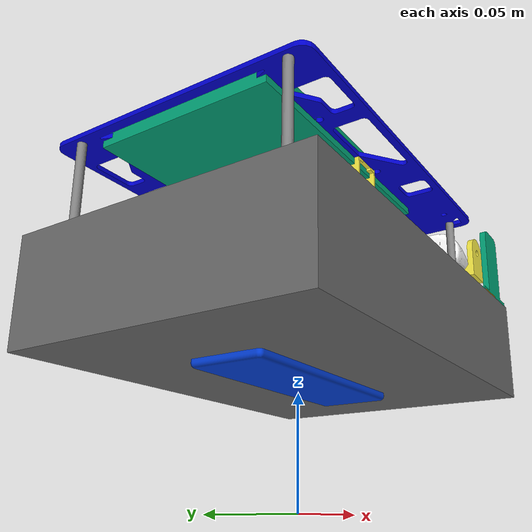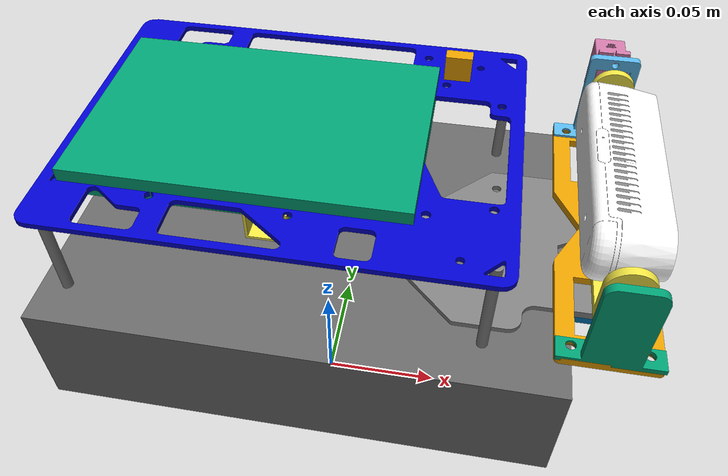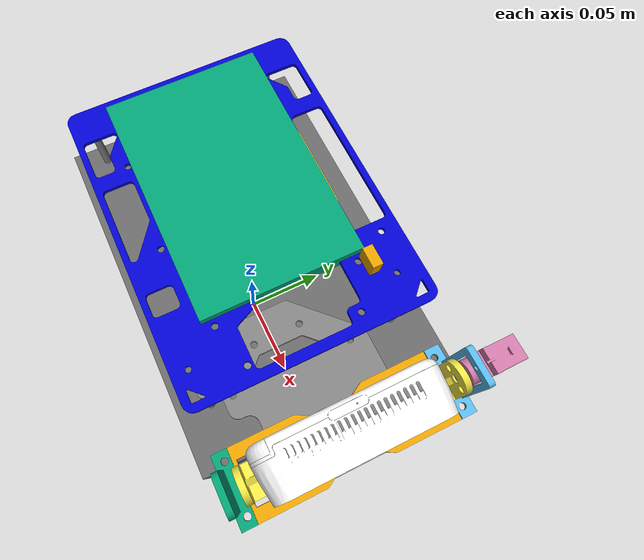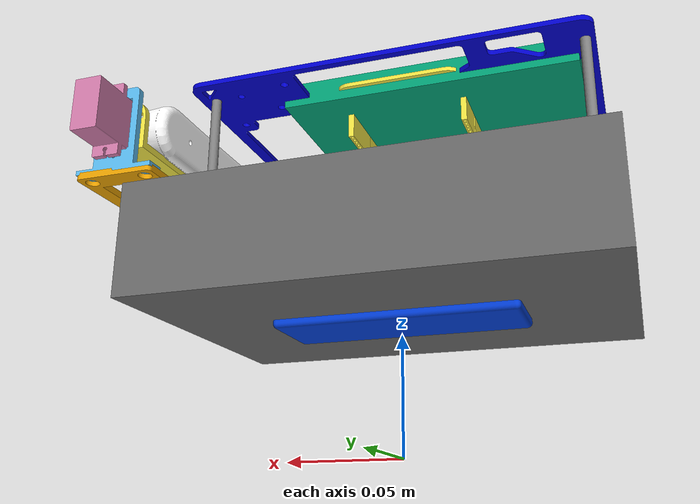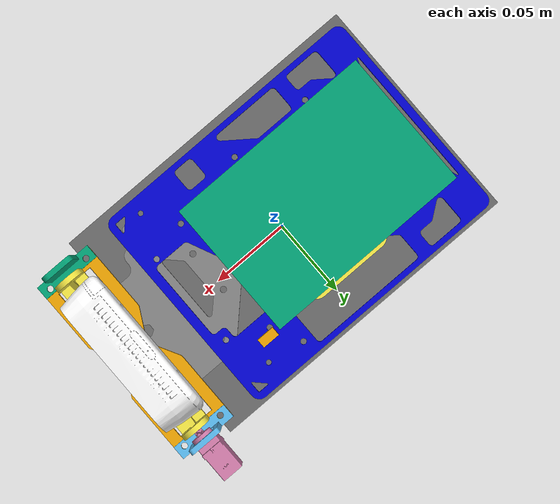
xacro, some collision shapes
<?xml version="1.0"?>
<robot name="myrobot" xmlns:xacro="http://ros.org/wiki/xacro">
  <xacro:include filename="$(find myrobot)/models/myroboturdf/myrobot.gazebo.xacro"/>
  <xacro:include filename="$(find myrobot)/models/myroboturdf/common_properties.xacro"/>

<!-- LINKS -->
    <link name="base_footprint"/>

    <joint name="base_joint" type="fixed">
      <parent link="base_footprint"/>
      <child link="cube_base"/>
      <origin xyz="0.0 0.0 0.08" rpy="0 0 0"/>
    </joint>

    <link name="cube_base">
      <inertial>
        <origin xyz="0 0 0" rpy="0 0 0"/>
        <mass value="8.2573504e-01"/>
        <inertia ixx="2.2124416e-03" ixy="-1.2294101e-05" ixz="3.4938785e-05"
                 iyy="2.1193702e-03" iyz="-5.0120904e-06"
                 izz="2.0064271e-03" />
      </inertial>
      <collision name="cube_base_collision">
        <origin xyz="0 0 0 " rpy="0 0 0"/>
        <geometry>
          <box size="0.19 0.134 0.047"/>
        </geometry>
      </collision>

      <visual name="cube_base_visual">
        <origin xyz="0.02 0 -0.01" rpy="1.5707 0 1.5707"/>
        <geometry>
          <mesh filename="package://myrobot/models/myroboturdf/meshes/Devastator.stl" scale="0.001 0.001 0.001"/>
        </geometry>
        <material name="light_black"/>
      </visual>

      <collision name = "caster_collision">
      <origin xyz="-1 0 -0.03" rpy="0 0 0"/>
        <geometry>
          <sphere radius="0.05"/>
        </geometry>
        <surface>
          <friction>
            <ode>
              <mu>0</mu>
              <mu2>0</mu2>
              <slip1>0</slip1>
              <slip2>0</slip2>
            </ode>
          </friction>
        </surface>
      </collision>

      <collision name = 'caster2_collision'>
      <origin xyz="1 0 -0.03" rpy="0 0 0"/>
        <geometry>
          <sphere radius="0.05"/>
        </geometry>
        <surface>
          <friction>
            <ode>
              <mu>0</mu>
              <mu2>0</mu2>
              <slip1>0</slip1>
              <slip2>0</slip2>
            </ode>
          </friction>
        </surface>
      </collision>

    </link>

    <joint name="wheel_left_joint" type="continuous">
      <parent link="cube_base"/>
      <child link="wheel_left_link"/>
      <origin xyz="-0.0 0.087 -0.013" rpy="-1.57 0 0"/>
      <axis xyz="0 0 1"/>
    </joint>

    <link name="wheel_left_link">
      <inertial>
        <mass value="0.2"/>
        <origin rpy="0 0 0" xyz="0 0 0"/>
        <inertia ixx="0.00052666666" ixy="0" ixz="0" iyy="0.00052666666" iyz="0" izz="0.001"/>
      </inertial>

      <collision name="wheel_left_link_collision">
        <geometry>
          <cylinder length="0.035" radius="0.06825"/>
        </geometry>
      </collision>

    </link>

    <joint name="wheel_right_joint" type="continuous">
      <parent link="cube_base"/>
      <child link="wheel_right_link"/>
      <origin xyz="-0.0 -0.087 -0.013" rpy="-1.57 0 0"/>
      <axis xyz="0 0 1"/>
    </joint>

    <link name="wheel_right_link">
      <inertial>
        <mass value="0.2"/>
        <origin rpy="0 0 0" xyz="0 0 0"/>
        <inertia ixx="0.00052666666" ixy="0" ixz="0" iyy="0.00052666666" iyz="0" izz="0.001"/>
      </inertial>

      <collision name="wheel_right_link_collision">
        <geometry>
          <cylinder length="0.035" radius="0.06825"/>
        </geometry>
      </collision>

    </link>

    <joint name="BaseBoards_joint" type="fixed">
      <parent link="cube_base"/>
      <child link="BaseBoards"/>
      <origin xyz="-0.01 0 0.0635" rpy="0 0 0"/>
    </joint>

    <link name="BaseBoards">

      <collision name="BaseBoards_collision">
        <origin xyz="0 0 0 " rpy="0 0 0"/>
        <geometry>
          <box size="0.16 0.122315 0.002"/>
        </geometry>
      </collision>
      <visual  name="BaseBoards_visual">
        <origin xyz="0.05 0 0" rpy="0 0 1.5707"/>
        <geometry>
          <mesh filename="package://myrobot/models/myroboturdf/meshes/Supports/BaseBoards.STL" scale="0.001 0.001 0.001"/>
        </geometry>
        <material name="blue"/>
      </visual>

      <collision name = "stick1_collision">

      <origin xyz="0.075 0.05 -0.02 " rpy="0 0 0"/>
        <geometry>
          <cylinder length="0.04" radius="0.002"/>
        </geometry>
      </collision>

      <visual name="stick1_visual">
      <origin xyz="0.075 0.05 -0.02 " rpy="0 0 0"/>
        <geometry>
          <cylinder length="0.04" radius="0.002"/>
        </geometry>
        <material name="grey"/>
      </visual>

      <collision name = "stick2_collision">
      <origin xyz="0.075 -0.05 -0.02" rpy="0 0 0"/>
        <geometry>
          <cylinder length="0.04" radius="0.002"/>
        </geometry>
      </collision>

      <visual name="stick2_visual">
      <origin xyz="0.075 -0.05 -0.02 " rpy="0 0 0"/>
        <geometry>
          <cylinder length="0.04" radius="0.002"/>
        </geometry>
        <material name="grey"/>
      </visual>

      <collision name = "stick3_collision">
      <origin xyz="-0.075 -0.05 -0.02" rpy="0 0 0"/>
        <geometry>
          <cylinder length="0.04" radius="0.002"/>
        </geometry>
      </collision>

      <visual name="stick3_visual">
      <origin xyz="-0.075 -0.05 -0.02 " rpy="0 0 0"/>
        <geometry>
          <cylinder length="0.04" radius="0.002"/>
        </geometry>
        <material name="grey"/>
      </visual>

      <collision name = "stick4_collision">
      <origin xyz="-0.075 0.05 -0.02" rpy="0 0 0"/>
        <geometry>
          <cylinder length="0.04" radius="0.002"/>
        </geometry>
      </collision>

      <visual name="stick4_visual">
      <origin xyz="-0.075 0.05 -0.02 " rpy="0 0 0"/>
        <geometry>
          <cylinder length="0.04" radius="0.002"/>
        </geometry>
        <material name="grey"/>
      </visual>
    </link>

    <joint name="piastra_anteriore_joint" type="fixed">
      <parent link="cube_base"/>
      <child link="piastra_anteriore"/>
      <origin xyz="0.078 -0.004 0.024" rpy="0 0 0"/>
    </joint>

    <link name="piastra_anteriore">

      <collision name="piastra_anteriore_collision">
        <origin xyz="0 0 0 " rpy="0 0 0"/>
        <geometry>
          <box size="0.086 0.079320 0.003"/>
        </geometry>
      </collision>
      <visual>
        <origin xyz="0.025 0 -0.0015 " rpy="0 0 1.5707"/>
        <geometry>
          <mesh filename="package://myrobot/models/myroboturdf/meshes/Supports/Piastra_anteriore2.stl" scale="0.001 0.001 0.001"/>
        </geometry>
        <material name="grey"/>
      </visual>
    </link>

    <joint name="supporto_sg90_joint" type="fixed">
      <parent link="piastra_anteriore"/>
      <child link="supporto_sg90"/>
      <origin xyz="0.024 0 -0.005" rpy="0 0 0"/>
    </joint>

    <link name="supporto_sg90">

      <collision name="supporto_sg90_collision">
        <origin xyz="0 0 0 " rpy="0 0 0"/>
        <geometry>
          <box size="0.027 0.049 0.004"/>
        </geometry>
      </collision>
      <visual>
        <origin xyz="-0.003 0.015 0" rpy="0 0 1.5707"/>
        <geometry>
          <mesh filename="package://myrobot/models/myroboturdf/meshes/Supports/Supporto_sg90_base.stl" scale="0.001 0.001 0.001"/>
        </geometry>
      </visual>
    </link>

    <joint name="supporto_piastra_albero_joint" type="fixed">
      <parent link="sg90h_shaft"/>
      <child link="supporto_piastra_albero"/>
      <origin xyz="0 0 -0.005" rpy="0 0 0"/>
    </joint>

    <link name="supporto_piastra_albero">

      <collision name="supporto_piastra_albero_collision">
        <origin xyz="0 0 0 " rpy="0 0 0"/>
        <geometry>
          <cylinder length="0.004" radius="0.008"/>
        </geometry>
      </collision>
      <visual name="supporto_piastra_albero_visual">
        <origin xyz="0 0 -0.002" rpy="1.5707 0 4.71238"/>
        <geometry>
          <mesh filename="package://myrobot/models/myroboturdf/meshes/Supports/Supporto_piastra_albero.stl" scale="0.001 0.001 0.001"/>
        </geometry>
      </visual>
    </link>

    <joint name="supporto_pitch_servo_1_joint" type="fixed">
      <parent link="supporto_piastra_albero"/>
      <child link="supporto_pitch_servo_1"/>
      <origin xyz="0 0 -0.004" rpy="0 0 0" />
    </joint>

    <link name='supporto_pitch_servo_1'>

      <collision name='supporto_pitch_servo_1_collision'>
        <geometry>
          <box size="0.035 0.12 0.003"/>
        </geometry>
      </collision>

      <visual name='supporto_pitch_servo_1_visual'>
      <origin xyz="0 0 0.004" rpy="3.1415 0 1.5707" />
        <geometry>
          <mesh filename="package://myrobot/models/myroboturdf/meshes/Supports/supporto_pitch_servo_1_new.stl" scale="0.001 0.001 0.001"/>
        </geometry>
      </visual>

    </link>

    <joint name="supporto_pitch_servo_2_joint" type="fixed">
      <parent link="supporto_pitch_servo_1"/>
      <child link="supporto_pitch_servo_2"/>
      <origin xyz="0 -0.059 -0.02" rpy="0 0 -1.5707"/>
    </joint>

    <link name='supporto_pitch_servo_2'>
      <collision name='supporto_pitch_servo_2_collision'>
        <geometry>
          <box size="0.002 0.02 0.035"/>
        </geometry>
      </collision>
      <visual name='supporto_pitch_servo_2_visual'>
      <origin xyz="-0.042 0 0.02" rpy="0 3.1415 0" />
        <geometry>
          <mesh filename="package://myrobot/models/myroboturdf/meshes/Supports/supporto_pitch_servo_2.stl" scale="0.001 0.001 0.001"/>
        </geometry>
      </visual>
    </link>

    <joint name="supporto_pitch_servo_2_noservo_joint" type="fixed">
      <parent link="supporto_pitch_servo_1"/>
      <child link="supporto_pitch_servo_2_noservo"/>
      <origin xyz="0 0.059 -0.02" rpy="0 0 -1.5707"/>
    </joint>

    <link name='supporto_pitch_servo_2_noservo'>
      <collision name='supporto_pitch_servo_2_noservo_collision'>
        <geometry>
          <box size="0.0075 0.035 0.002"/>
        </geometry>
      </collision>
      <visual name='supporto_pitch_servo_2_noservo_visual'>
      <origin xyz="0.085 0 0.02" rpy="0 3.1415 0" />
        <geometry>
          <mesh filename="package://myrobot/models/myroboturdf/meshes/Supports/supporto_pitch_servo_2_noservo.dae"/>
            scale="0.001 0.001 0.001"/>
        </geometry>
      </visual>

    </link>

    <joint name="supp_RS_joint" type="fixed">
      <parent link="sg90v_shaft"/>
      <child link="supp_RS"/>
      <origin xyz="0 0.010 -0.055" rpy="1.5707 0 0"/>
    </joint>

    <link name='supp_RS'>
      <collision name='collision'>
        <geometry>
          <box size="0.016 0.105 0.0035"/>
        </geometry>
      </collision>
      <visual name='supp_RS_visual'>
     <origin xyz="0.0 0.054 0.013" rpy="1.5707 0 1.5707"/>
        <geometry>
          <mesh filename="package://myrobot/models/myroboturdf/meshes/Supports/Supp_RS.dae"/>
        </geometry>
      </visual>

      <collision name='vertical3_collision'>
      <origin xyz="0 0.05 0.01" rpy="0 0 0"/>
        <geometry>
          <box size="0.016 0.0035 0.02"/>
        </geometry>
      </collision>

      <collision name='vertical4_collision'>
      <origin xyz="0 -0.05 0.01" rpy="0 0 0"/>
        <geometry>
          <box size="0.016 0.0035 0.02"/>
        </geometry>
      </collision>

    </link>

  <joint name="imu_joint" type="fixed">
    <parent link="cube_base"/>
    <child link="imu_link"/>
    <origin xyz="0 0 0" rpy="0 0 0"/>
  </joint>

  <link name="imu_link"/>

    <joint name="RealSense_joint" type="fixed">
      <parent link="supp_RS"/>
      <child link="RealSense"/>
      <origin xyz="0 0 0.013" rpy="0 0 0"/>
    </joint>

    <link name="RealSense">

        <collision name="RealSense_collision">
          <geometry>
            <box size="0.025 0.087 0.02"/>
          </geometry>
        </collision>
        <visual name="RealSense_visual">
          <origin xyz="0.0125 0.0 0" rpy="1.5707 0 1.5707"/>
          <geometry>
            <mesh filename="package://myrobot/models/myroboturdf/meshes/Sensors/IntelRealsense_D435_Multibody.dae"/>
          </geometry>
          <material name="white"/>
        </visual>
    </link>

    <joint name="rightfront_force_sensor_joint" type="fixed">
      <parent link="cube_base"/>
      <child link="rightfront_force_sensor"/>
      <origin xyz="0.11 0.05 0" rpy="0 0 0"/>
    </joint>

    <link name="rightfront_force_sensor">
        <collision name="rightfront_force_sensor_collision">
          <geometry>
            <box size="0.05 0.01 0.01"/>
          </geometry>
        </collision>
    </link>

    <joint name="leftfront_force_sensor_joint" type="fixed">
      <parent link="cube_base"/>
      <child link="leftfront_force_sensor"/>
      <origin xyz="0.11 -0.05 0" rpy="0 0 0"/>
    </joint>

    <link name="leftfront_force_sensor">
        <collision name="leftfront_force_sensor_collision">
          <geometry>
            <box size="0.05 0.01 0.01"/>
          </geometry>
        </collision>
    </link>

    <joint name="LightSensor_joint" type="fixed">
      <parent link="BaseBoards"/>
      <child link="LightSensor"/>
      <origin xyz="0.055 0.04 0.008 " rpy="0 -1.5707 0"/>
    </joint>

    <link name="LightSensor">
        <visual name="LightSensor_visual">
          <origin xyz="0.001 0 0" rpy=" 0 0 -1.5707"/>
          <geometry>
            <box size="0.005 0.01 0.01"/>
          </geometry>
        </visual>
        <collision name="LightSensor_collision">
          <geometry>
            <box size="0.005 0.01 0.01"/>
          </geometry>
        </collision>

    </link>

    <joint name="laser_sensor_joint" type="fixed">
      <parent link="cube_base"/>
      <child link="laser_sensor"/>
      <origin xyz="0 0 0.15 " rpy="0 0 0"/>
    </joint>

    <link name="laser_sensor">
        <inertial>
          <mass value="0.114" />
          <origin xyz="0 0 0" />
          <inertia ixx="0.001" ixy="0.0" ixz="0.0"
                   iyy="0.001" iyz="0.0"
                   izz="0.001" />
        </inertial>

        <collision name="laser_sensor_collision">
          <geometry>
            <box size="0.05 0.01 0.01"/>
          </geometry>
        </collision>
    </link>

    <joint name="LattePanda_joint" type="fixed">
      <parent link="BaseBoards"/>
      <child link="LattePanda"/>
      <origin xyz="-0.012 0.001 0.002" rpy="0 0 0"/>
    </joint>

    <link name="LattePanda">

      <collision name="LattePanda_collision">
          <geometry>
            <box size="0.12 0.08 0.01"/>
          </geometry>
      </collision>
      <visual name="LattePanda_visual">
          <origin xyz="0.001 0 0" rpy="1.5707 0 0 "/>
          <geometry>
            <mesh filename="package://myrobot/models/myroboturdf/meshes/Boards/LattePanda_delta.dae"/>
          </geometry>
      </visual>
      </link>

    <joint name="K64F_joint" type="fixed">
      <parent link="BaseBoards"/>
      <child link="K64F"/>
      <origin xyz="0 0 -0.0045" rpy="3.1415 0 1.5707"/>
    </joint>

    <link name="K64F">

      <collision name="K64F_collision">
          <geometry>
            <box size="0.085 0.055 0.015"/>
          </geometry>
      </collision>

      <visual name="visual">
          <origin xyz="-0.037 -0.027 -0.007" rpy=" 0 0 0"/>
          <geometry>
            <mesh filename="package://myrobot/models/myroboturdf/meshes/Boards/K64F.dae"/>
          </geometry>
      </visual>
      </link>

    <joint name="sg90h_joint" type="fixed">
      <parent link="supporto_sg90"/>
      <child link="sg90h"/>
      <origin xyz="0.003 -0.00 -0.01" rpy="1.5707 0 0"/>
    </joint>

    <link name="sg90h">
      <collision name="sg90h_collision">
          <geometry>
            <box size=".012 0.022 0.022"/>
          </geometry>
      </collision>
      <visual name="sg90h_visual">
          <origin xyz="0 -0.011 0" rpy=" 0 0 0"/>
          <geometry>
            <mesh filename="package://myrobot/models/myroboturdf/meshes/Misc/sg90.dae"/>
          </geometry>
      </visual>
    </link>

    <joint name="sg90h_shaft_joint" type="fixed">
      <parent link="sg90h"/>
      <child link="sg90h_shaft"/>
      <origin xyz="-0.0 0.015 -0.005" rpy="1.5707 0 0"/>
      <axis xyz="0 0 1"/>
    </joint>

    <link name="sg90h_shaft">
      <collision name="sg90h_shaft_collision">
        <geometry>
          <cylinder length="0.01" radius="0.002"/>
        </geometry>
      </collision>

      <visual name="sg90h_shaft_visual">
        <geometry>
          <cylinder length="0.01" radius="0.002"/>
        </geometry>
      </visual>
    </link>

    <joint name="sg90v_joint" type="fixed">
      <parent link="supporto_pitch_servo_2"/>
      <child link="sg90v"/>
      <origin xyz="0.011 0 0" rpy="0 0 1.5707"/>
    </joint>

    <link name="sg90v">
      <collision name="sg90v_collision">
          <geometry>
            <box size=".012 0.022 0.022"/>
          </geometry>
      </collision>

       <visual name="sg90v_visual">
          <origin xyz="0 -0.011 0" rpy=" 0 0 0"/>
          <geometry>
            <mesh filename="package://myrobot/models/myroboturdf/meshes/Misc/sg90.dae"/>
          </geometry>
      </visual>
      </link>

    <joint name="sg90v_shaft_joint" type="fixed">
      <parent link="sg90v"/>
      <child link="sg90v_shaft"/>
      <origin xyz="-0.0 0.015 -0.005" rpy="1.5707 0 0 "/>
      <axis xyz="0 0 1"/>
    </joint>

    <link name="sg90v_shaft">
      <collision name="sg90v_shaft_collision">
        <geometry>
          <cylinder length="0.01" radius="0.002"/>
        </geometry>
      </collision>

      <visual name="sg90v_shaft_visual">
        <geometry>
          <cylinder length="0.01" radius="0.002"/>
        </geometry>
      </visual>
    </link>

   <joint name="batteria_joint" type="fixed">
      <parent link="cube_base"/>
      <child link="batteria"/>
      <origin xyz="0 0 -0.015" rpy="0 0 0"/>
    </joint>

    <link name="batteria">

      <collision name="batteria_collision">
          <geometry>
            <box size="0.102 0.035 0.025"/>
          </geometry>
      </collision>
      <visual name="batteria_visual">
          <origin xyz="0 0 -0.012" rpy=" 0 0 0"/>
          <geometry>
            <mesh filename="package://myrobot/models/myroboturdf/meshes/Misc/Turnigy_2200mAh_3S_20C_Lipo_Pack.dae"/>
          </geometry>
      </visual>
      </link>

</robot>

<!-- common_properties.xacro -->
<robot name="xacro_properties" xmlns:xacro="http://ros.org/wiki/xacro">

  <!-- Init colour for rviz -->
  <material name="black">
      <color rgba="0.0 0.0 0.0 1.0"/>
  </material>

  <material name="dark">
    <color rgba="0.3 0.3 0.3 1.0"/>
  </material>
  <material name="light_black">
    <color rgba="0.4 0.4 0.4 1.0"/>
  </material>

  <material name="blue">
    <color rgba="0.0 0.0 0.8 1.0"/>
  </material>

  <material name="green">
    <color rgba="0.0 0.8 0.0 1.0"/>
  </material>

  <material name="grey">
    <color rgba="0.5 0.5 0.5 1.0"/>
  </material>

  <material name="orange">
    <color rgba="${255/255} ${108/255} ${10/255} 1.0"/>
  </material>

  <material name="brown">
    <color rgba="${222/255} ${207/255} ${195/255} 1.0"/>
  </material>

  <material name="red">
    <color rgba="0.8 0.0 0.0 1.0"/>
  </material>

  <material name="white">
    <color rgba="1.0 1.0 1.0 1.0"/>
  </material>
</robot>
